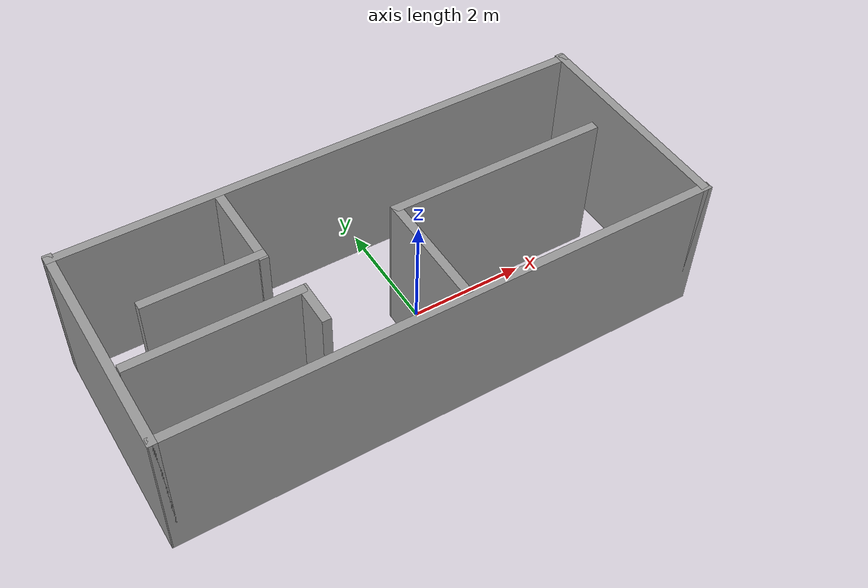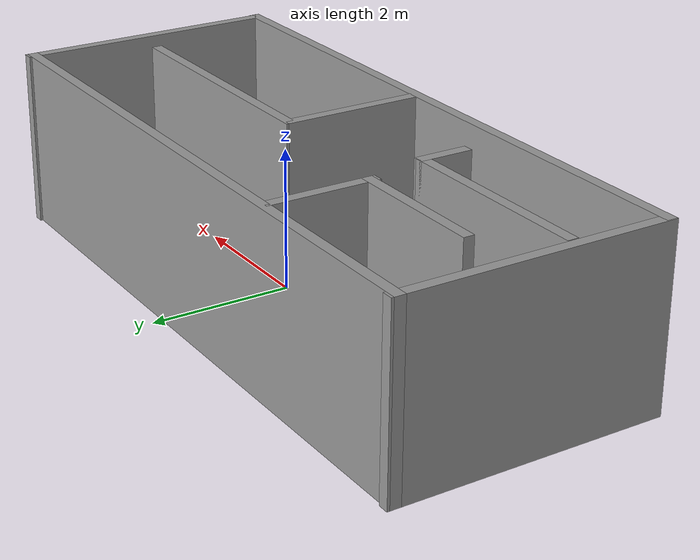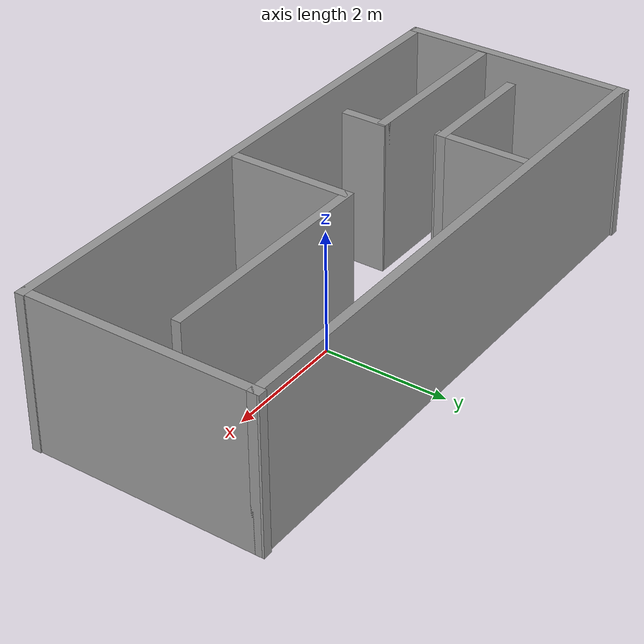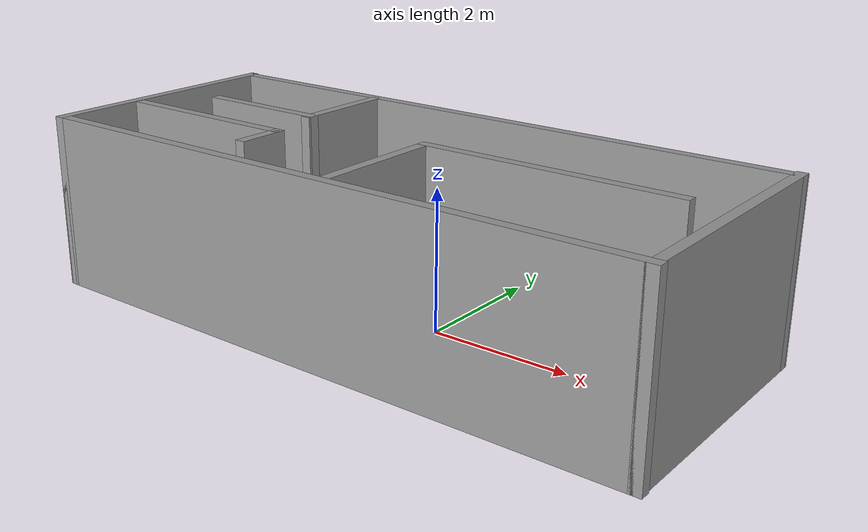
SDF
<?xml version='1.0'?>
<sdf version='1.7'>
  <model name='room'>
    <pose>-0.594337 -0.018467 0 0 -0 0</pose>
    <link name='Wall_0'>
      <collision name='Wall_0_Collision'>
        <geometry>
          <box>
            <size>3.81286 0.15 2.5</size>
          </box>
        </geometry>
        <pose>0 0 1.25 0 -0 0</pose>
      </collision>
      <visual name='Wall_0_Visual'>
        <pose>0 0 1.25 0 -0 0</pose>
        <geometry>
          <box>
            <size>3.81286 0.15 2.5</size>
          </box>
        </geometry>
        <material>
          <script>
            <uri>file://media/materials/scripts/gazebo.material</uri>
            <name>Gazebo/Grey</name>
          </script>
          <ambient>1 1 1 1</ambient>
        </material>
        <meta>
          <layer>0</layer>
        </meta>
      </visual>
      <pose>-4.54192 -0 0 0 -0 -1.5708</pose>
    </link>
    <link name='Wall_1'>
      <collision name='Wall_1_Collision'>
        <geometry>
          <box>
            <size>9.21626 0.15 2.5</size>
          </box>
        </geometry>
        <pose>0 0 1.25 0 -0 0</pose>
      </collision>
      <visual name='Wall_1_Visual'>
        <pose>0 0 1.25 0 -0 0</pose>
        <geometry>
          <box>
            <size>9.21626 0.15 2.5</size>
          </box>
        </geometry>
        <material>
          <script>
            <uri>file://media/materials/scripts/gazebo.material</uri>
            <name>Gazebo/Grey</name>
          </script>
          <ambient>1 1 1 1</ambient>
        </material>
        <meta>
          <layer>0</layer>
        </meta>
      </visual>
      <pose>0.008795 -1.83143 0 0 -0 0</pose>
    </link>
    <link name='Wall_11'>
      <collision name='Wall_11_Collision'>
        <geometry>
          <box>
            <size>2.83025 0.15 2.5</size>
          </box>
        </geometry>
        <pose>0 0 1.25 0 -0 0</pose>
      </collision>
      <visual name='Wall_11_Visual'>
        <pose>0 0 1.25 0 -0 0</pose>
        <geometry>
          <box>
            <size>2.83025 0.15 2.5</size>
          </box>
        </geometry>
        <material>
          <script>
            <uri>file://media/materials/scripts/gazebo.material</uri>
            <name>Gazebo/Grey</name>
          </script>
          <ambient>1 1 1 1</ambient>
        </material>
        <meta>
          <layer>0</layer>
        </meta>
      </visual>
      <pose>-3.03591 -0.55143 0 0 -0 0</pose>
    </link>
    <link name='Wall_12'>
      <collision name='Wall_12_Collision'>
        <geometry>
          <box>
            <size>0.75 0.15 2.5</size>
          </box>
        </geometry>
        <pose>0 0 1.25 0 -0 0</pose>
      </collision>
      <visual name='Wall_12_Visual'>
        <pose>0 0 1.25 0 -0 0</pose>
        <geometry>
          <box>
            <size>0.75 0.15 2.5</size>
          </box>
        </geometry>
        <material>
          <script>
            <uri>file://media/materials/scripts/gazebo.material</uri>
            <name>Gazebo/Grey</name>
          </script>
          <ambient>1 1 1 1</ambient>
        </material>
        <meta>
          <layer>0</layer>
        </meta>
      </visual>
      <pose>-1.6606 -0.85143 0 0 -0 -1.5708</pose>
    </link>
    <link name='Wall_14'>
      <collision name='Wall_14_Collision'>
        <geometry>
          <box>
            <size>2 0.15 2.5</size>
          </box>
        </geometry>
        <pose>0 0 1.25 0 -0 0</pose>
      </collision>
      <visual name='Wall_14_Visual'>
        <pose>0 0 1.25 0 -0 0</pose>
        <geometry>
          <box>
            <size>2 0.15 2.5</size>
          </box>
        </geometry>
        <material>
          <script>
            <uri>file://media/materials/scripts/gazebo.material</uri>
            <name>Gazebo/Grey</name>
          </script>
          <ambient>1 1 1 1</ambient>
        </material>
        <meta>
          <layer>0</layer>
        </meta>
      </visual>
      <pose>0.287809 -0.808483 0 0 -0 1.5708</pose>
    </link>
    <link name='Wall_15'>
      <collision name='Wall_15_Collision'>
        <geometry>
          <box>
            <size>3.75 0.15 2.5</size>
          </box>
        </geometry>
        <pose>0 0 1.25 0 -0 0</pose>
      </collision>
      <visual name='Wall_15_Visual'>
        <pose>0 0 1.25 0 -0 0</pose>
        <geometry>
          <box>
            <size>3.75 0.15 2.5</size>
          </box>
        </geometry>
        <material>
          <script>
            <uri>file://media/materials/scripts/gazebo.material</uri>
            <name>Gazebo/Grey</name>
          </script>
          <ambient>1 1 1 1</ambient>
        </material>
        <meta>
          <layer>0</layer>
        </meta>
      </visual>
      <pose>2.08781 0.151696 0 0 -0 0</pose>
    </link>
    <link name='Wall_2'>
      <collision name='Wall_2_Collision'>
        <geometry>
          <box>
            <size>3.81286 0.15 2.5</size>
          </box>
        </geometry>
        <pose>0 0 1.25 0 -0 0</pose>
      </collision>
      <visual name='Wall_2_Visual'>
        <pose>0 0 1.25 0 -0 0</pose>
        <geometry>
          <box>
            <size>3.81286 0.15 2.5</size>
          </box>
        </geometry>
        <material>
          <script>
            <uri>file://media/materials/scripts/gazebo.material</uri>
            <name>Gazebo/Grey</name>
          </script>
          <ambient>1 1 1 1</ambient>
        </material>
        <meta>
          <layer>0</layer>
        </meta>
      </visual>
      <pose>4.52434 -0 0 0 -0 1.5708</pose>
    </link>
    <link name='Wall_3'>
      <collision name='Wall_3_Collision'>
        <geometry>
          <box>
            <size>9.21626 0.15 2.5</size>
          </box>
        </geometry>
        <pose>0 0 1.25 0 -0 0</pose>
      </collision>
      <visual name='Wall_3_Visual'>
        <pose>0 0 1.25 0 -0 0</pose>
        <geometry>
          <box>
            <size>9.21626 0.15 2.5</size>
          </box>
        </geometry>
        <material>
          <script>
            <uri>file://media/materials/scripts/gazebo.material</uri>
            <name>Gazebo/Grey</name>
          </script>
          <ambient>1 1 1 1</ambient>
        </material>
        <meta>
          <layer>0</layer>
        </meta>
      </visual>
      <pose>-0.008795 1.79625 0 0 -0 3.14159</pose>
    </link>
    <link name='Wall_5'>
      <collision name='Wall_5_Collision'>
        <geometry>
          <box>
            <size>1.54527 0.15 2.5</size>
          </box>
        </geometry>
        <pose>0 0 1.25 0 -0 0</pose>
      </collision>
      <visual name='Wall_5_Visual'>
        <pose>0 0 1.25 0 -0 0</pose>
        <geometry>
          <box>
            <size>1.54527 0.15 2.5</size>
          </box>
        </geometry>
        <material>
          <script>
            <uri>file://media/materials/scripts/gazebo.material</uri>
            <name>Gazebo/Grey</name>
          </script>
          <ambient>1 1 1 1</ambient>
        </material>
        <meta>
          <layer>0</layer>
        </meta>
      </visual>
      <pose>-1.87737 1.00942 0 0 -0 -1.5708</pose>
    </link>
    <link name='Wall_6'>
      <collision name='Wall_6_Collision'>
        <geometry>
          <box>
            <size>2 0.15 2.5</size>
          </box>
        </geometry>
        <pose>0 0 1.25 0 -0 0</pose>
      </collision>
      <visual name='Wall_6_Visual'>
        <pose>0 0 1.25 0 -0 0</pose>
        <geometry>
          <box>
            <size>2 0.15 2.5</size>
          </box>
        </geometry>
        <material>
          <script>
            <uri>file://media/materials/scripts/gazebo.material</uri>
            <name>Gazebo/Grey</name>
          </script>
          <ambient>1 1 1 1</ambient>
        </material>
        <meta>
          <layer>0</layer>
        </meta>
      </visual>
      <pose>-2.80237 0.346966 0 0 -0 3.14159</pose>
    </link>
    <static>1</static>
  </model>
</sdf>
